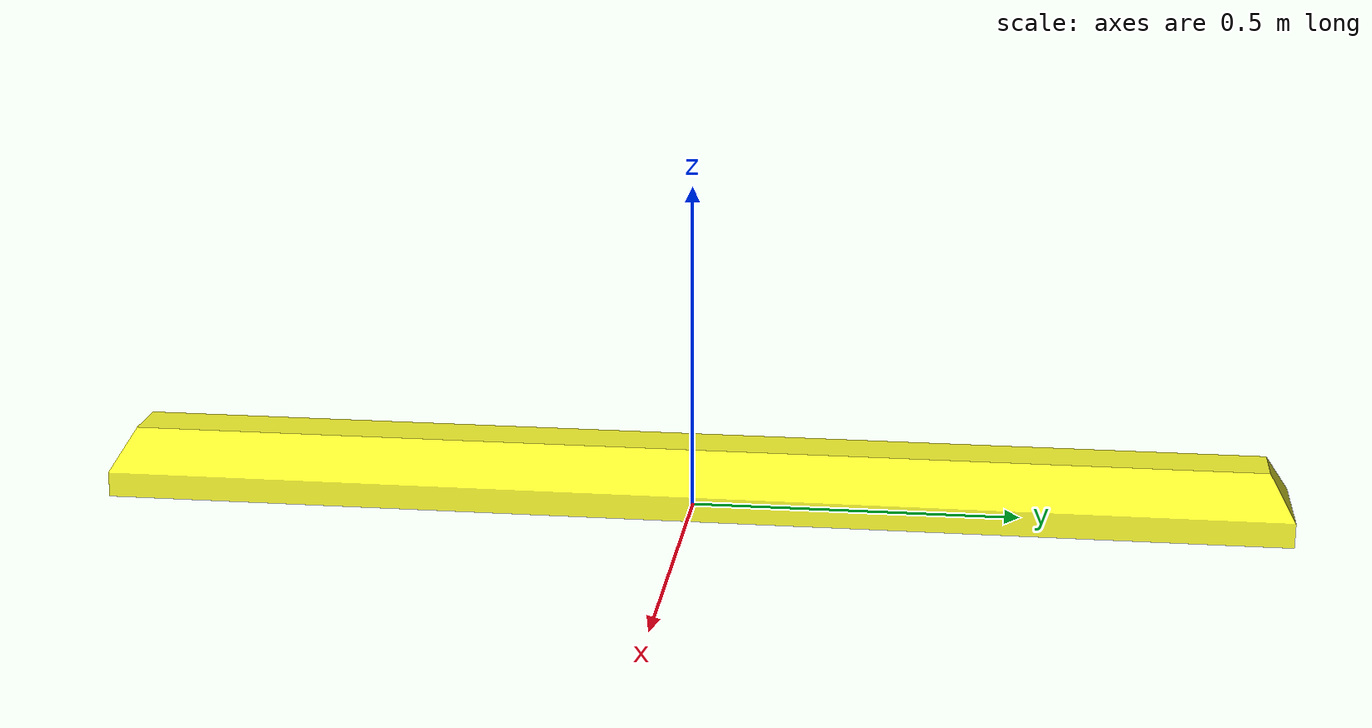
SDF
<?xml version="1.0" ?>
<sdf version="1.4">
  <model name="drc_practice_yellow_parking_block">
    <static>true</static>
    <link name="link">
      <visual name="visual">
        <geometry>
          <mesh>
            <uri>model://drc_practice_yellow_parking_block/meshes/block.dae</uri>
          </mesh>
        </geometry>
      </visual>

      <collision name="collision">
        <geometry>
          <mesh>
            <uri>model://drc_practice_yellow_parking_block/meshes/block.dae</uri>
          </mesh>
        </geometry>
      </collision>
    </link>
  </model>
</sdf>
